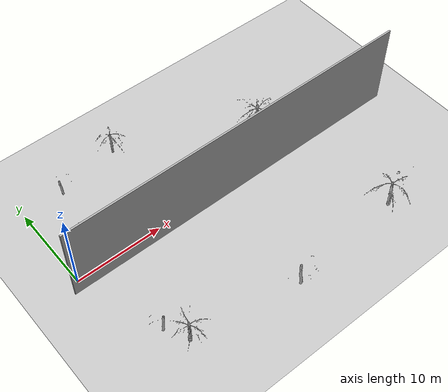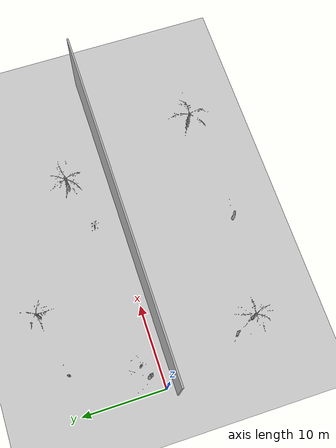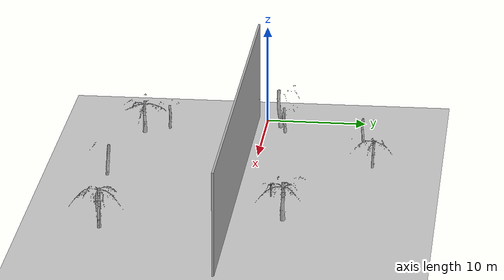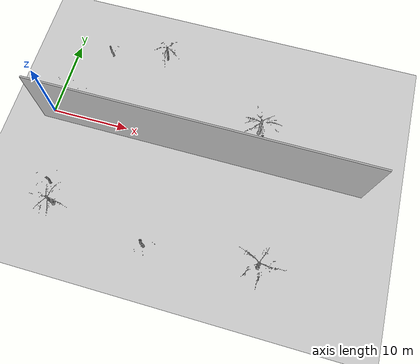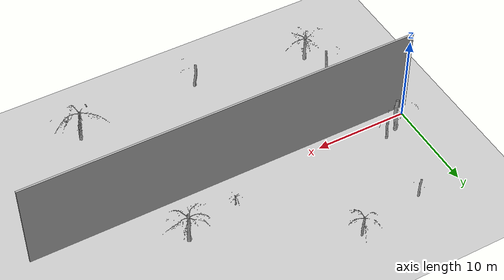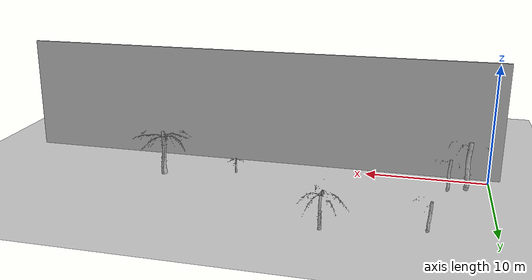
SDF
<sdf version="1.6">
 <world name="default">
  <model name="ground_plane">
   <static>1</static>
   <link name="link">
    <collision name="collision">
     <geometry><plane><normal>0 0 1</normal><size>1000 1000</size></plane></geometry>
     <surface>
      <contact><collide_bitmask>65535</collide_bitmask></contact>
      <friction><ode><mu>100</mu><mu2>50</mu2></ode></friction>
     </surface>
    </collision>
    <visual name="visual">
     <cast_shadows>0</cast_shadows>
     <geometry><plane><normal>0 0 1</normal><size>1000 1000</size></plane></geometry>
     <material>
      <script><uri>file://media/materials/scripts/gazebo.material</uri><name>Gazebo/Grey</name></script>
     </material>
    </visual>
   </link>
  </model>
  <model name="grey_wall_boundary_0">
   <static>1</static>
   <link name="link">
    <pose>0 0 5 0 -0 0</pose>
    <collision name="collision"><geometry><box><size>42 0.2 10</size></box></geometry></collision>
    <visual name="visual">
     <cast_shadows>0</cast_shadows>
     <geometry><box><size>42 0.2 10</size></box></geometry>
    </visual>
   </link>
   <pose>20 -1 0 0 -0 0</pose>
  </model>
  <model name="tre_29">
   <static>1</static>
   <link name="link">
    <pose>12.168865859177409 -1.2299666857075735 0 0 0 3.9978551390964157</pose>
    <inertial>
     <mass>100</mass>
     <inertia><ixx>100</ixx><ixy>0</ixy><ixz>0</ixz><iyy>100</iyy><iyz>0</iyz><izz>100</izz></inertia>
    </inertial>
    <collision name="collision">
     <geometry>
      <mesh>
       <uri>file:///home/dgguglielmo/forest_gen/models_high_res/picea_abies_6.dae</uri>
       <scale>1.1414534060449202 1.1414534060449202 1.1414534060449202</scale>
      </mesh>
     </geometry>
    </collision>
    <visual name="visual">
     <geometry>
      <mesh>
       <uri>file:///home/dgguglielmo/forest_gen/models_high_res/picea_abies_6.dae</uri>
       <scale>1.1414534060449202 1.1414534060449202 1.1414534060449202</scale>
      </mesh>
     </geometry>
    </visual>
   </link>
   <pose>12.168865859177409 -1.2299666857075735 0 0 0 3.9978551390964157</pose>
  </model>
  <model name="tre_60">
   <static>1</static>
   <link name="link">
    <pose>14.018864369085485 -2.6606644750598036 0 0 0 1.8853007292422441</pose>
    <inertial>
     <mass>100</mass>
     <inertia><ixx>100</ixx><ixy>0</ixy><ixz>0</ixz><iyy>100</iyy><iyz>0</iyz><izz>100</izz></inertia>
    </inertial>
    <collision name="collision">
     <geometry>
      <mesh>
       <uri>file:///home/dgguglielmo/forest_gen/models_high_res/picea_abies_5.dae</uri>
       <scale>1.34774008633178 1.34774008633178 1.34774008633178</scale>
      </mesh>
     </geometry>
    </collision>
    <visual name="visual">
     <geometry>
      <mesh>
       <uri>file:///home/dgguglielmo/forest_gen/models_high_res/picea_abies_5.dae</uri>
       <scale>1.34774008633178 1.34774008633178 1.34774008633178</scale>
      </mesh>
     </geometry>
    </visual>
   </link>
   <pose>14.018864369085485 -2.6606644750598036 0 0 0 1.8853007292422441</pose>
  </model>
  <model name="tre_64">
   <static>1</static>
   <link name="link">
    <pose>14.840401717713121 -1.233018629328214 0 0 0 4.036530118761634</pose>
    <inertial>
     <mass>100</mass>
     <inertia><ixx>100</ixx><ixy>0</ixy><ixz>0</ixz><iyy>100</iyy><iyz>0</iyz><izz>100</izz></inertia>
    </inertial>
    <collision name="collision">
     <geometry>
      <mesh>
       <uri>file:///home/dgguglielmo/forest_gen/models_high_res/picea_abies_4.dae</uri>
       <scale>1.5780207963694264 1.5780207963694264 1.5780207963694264</scale>
      </mesh>
     </geometry>
    </collision>
    <visual name="visual">
     <geometry>
      <mesh>
       <uri>file:///home/dgguglielmo/forest_gen/models_high_res/picea_abies_4.dae</uri>
       <scale>1.5780207963694264 1.5780207963694264 1.5780207963694264</scale>
      </mesh>
     </geometry>
    </visual>
   </link>
   <pose>14.840401717713121 -1.233018629328214 0 0 0 4.036530118761634</pose>
  </model>
  <model name="tre_77">
   <static>1</static>
   <link name="link">
    <pose>16.334157241653017 -18.478896604258487 0 0 0 3.045804199991813</pose>
    <inertial>
     <mass>100</mass>
     <inertia><ixx>100</ixx><ixy>0</ixy><ixz>0</ixz><iyy>100</iyy><iyz>0</iyz><izz>100</izz></inertia>
    </inertial>
    <collision name="collision">
     <geometry>
      <mesh>
       <uri>file:///home/dgguglielmo/forest_gen/models_high_res/picea_abies_6.dae</uri>
       <scale>1.7958995731251228 1.7958995731251228 1.7958995731251228</scale>
      </mesh>
     </geometry>
    </collision>
    <visual name="visual">
     <geometry>
      <mesh>
       <uri>file:///home/dgguglielmo/forest_gen/models_high_res/picea_abies_6.dae</uri>
       <scale>1.7958995731251228 1.7958995731251228 1.7958995731251228</scale>
      </mesh>
     </geometry>
    </visual>
   </link>
   <pose>16.334157241653017 -18.478896604258487 0 0 0 3.045804199991813</pose>
  </model>
  <model name="tre_92">
   <static>1</static>
   <link name="link">
    <pose>16.84785739680862 -2.635220994957635 0 0 0 5.793299502029059</pose>
    <inertial>
     <mass>100</mass>
     <inertia><ixx>100</ixx><ixy>0</ixy><ixz>0</ixz><iyy>100</iyy><iyz>0</iyz><izz>100</izz></inertia>
    </inertial>
    <collision name="collision">
     <geometry>
      <mesh>
       <uri>file:///home/dgguglielmo/forest_gen/models_high_res/picea_abies_5.dae</uri>
       <scale>1.8541302296512852 1.8541302296512852 1.8541302296512852</scale>
      </mesh>
     </geometry>
    </collision>
    <visual name="visual">
     <geometry>
      <mesh>
       <uri>file:///home/dgguglielmo/forest_gen/models_high_res/picea_abies_5.dae</uri>
       <scale>1.8541302296512852 1.8541302296512852 1.8541302296512852</scale>
      </mesh>
     </geometry>
    </visual>
   </link>
   <pose>16.84785739680862 -2.635220994957635 0 0 0 5.793299502029059</pose>
  </model>
  <model name="tre_95">
   <static>1</static>
   <link name="link">
    <pose>13.135928748372208 -1.4112312973243526 0 0 0 5.102465112773473</pose>
    <inertial>
     <mass>100</mass>
     <inertia><ixx>100</ixx><ixy>0</ixy><ixz>0</ixz><iyy>100</iyy><iyz>0</iyz><izz>100</izz></inertia>
    </inertial>
    <collision name="collision">
     <geometry>
      <mesh>
       <uri>file:///home/dgguglielmo/forest_gen/models_high_res/picea_abies_6.dae</uri>
       <scale>1.4055238471456564 1.4055238471456564 1.4055238471456564</scale>
      </mesh>
     </geometry>
    </collision>
    <visual name="visual">
     <geometry>
      <mesh>
       <uri>file:///home/dgguglielmo/forest_gen/models_high_res/picea_abies_6.dae</uri>
       <scale>1.4055238471456564 1.4055238471456564 1.4055238471456564</scale>
      </mesh>
     </geometry>
    </visual>
   </link>
   <pose>13.135928748372208 -1.4112312973243526 0 0 0 5.102465112773473</pose>
  </model>
  <model name="tre_106">
   <static>1</static>
   <link name="link">
    <pose>19.246810084680128 -3.0116408937233246 0 0 0 2.5631212448345755</pose>
    <inertial>
     <mass>100</mass>
     <inertia><ixx>100</ixx><ixy>0</ixy><ixz>0</ixz><iyy>100</iyy><iyz>0</iyz><izz>100</izz></inertia>
    </inertial>
    <collision name="collision">
     <geometry>
      <mesh>
       <uri>file:///home/dgguglielmo/forest_gen/models_high_res/picea_abies_6.dae</uri>
       <scale>1.0513148903124316 1.0513148903124316 1.0513148903124316</scale>
      </mesh>
     </geometry>
    </collision>
    <visual name="visual">
     <geometry>
      <mesh>
       <uri>file:///home/dgguglielmo/forest_gen/models_high_res/picea_abies_6.dae</uri>
       <scale>1.0513148903124316 1.0513148903124316 1.0513148903124316</scale>
      </mesh>
     </geometry>
    </visual>
   </link>
   <pose>19.246810084680128 -3.0116408937233246 0 0 0 2.5631212448345755</pose>
  </model>
  <model name="tre_107">
   <static>1</static>
   <link name="link">
    <pose>13.720982302953615 -0.20400275023374803 0 0 0 0.3253363029165158</pose>
    <inertial>
     <mass>100</mass>
     <inertia><ixx>100</ixx><ixy>0</ixy><ixz>0</ixz><iyy>100</iyy><iyz>0</iyz><izz>100</izz></inertia>
    </inertial>
    <collision name="collision">
     <geometry>
      <mesh>
       <uri>file:///home/dgguglielmo/forest_gen/models_high_res/picea_abies_4.dae</uri>
       <scale>1.8011216741998948 1.8011216741998948 1.8011216741998948</scale>
      </mesh>
     </geometry>
    </collision>
    <visual name="visual">
     <geometry>
      <mesh>
       <uri>file:///home/dgguglielmo/forest_gen/models_high_res/picea_abies_4.dae</uri>
       <scale>1.8011216741998948 1.8011216741998948 1.8011216741998948</scale>
      </mesh>
     </geometry>
    </visual>
   </link>
   <pose>13.720982302953615 -0.20400275023374803 0 0 0 0.3253363029165158</pose>
  </model>
  <model name="tre_147">
   <static>1</static>
   <link name="link">
    <pose>11.801814907156238 -11.03987866611063 0 0 0 1.7254356143339893</pose>
    <inertial>
     <mass>100</mass>
     <inertia><ixx>100</ixx><ixy>0</ixy><ixz>0</ixz><iyy>100</iyy><iyz>0</iyz><izz>100</izz></inertia>
    </inertial>
    <collision name="collision">
     <geometry>
      <mesh>
       <uri>file:///home/dgguglielmo/forest_gen/models_high_res/picea_abies_4.dae</uri>
       <scale>0.6161290328736192 0.6161290328736192 0.6161290328736192</scale>
      </mesh>
     </geometry>
    </collision>
    <visual name="visual">
     <geometry>
      <mesh>
       <uri>file:///home/dgguglielmo/forest_gen/models_high_res/picea_abies_4.dae</uri>
       <scale>0.6161290328736192 0.6161290328736192 0.6161290328736192</scale>
      </mesh>
     </geometry>
    </visual>
   </link>
   <pose>11.801814907156238 -11.03987866611063 0 0 0 1.7254356143339893</pose>
  </model>
  <model name="tre_152">
   <static>1</static>
   <link name="link">
    <pose>12.078707670403645 -15.550199677613797 0 0 0 2.943795989488037</pose>
    <inertial>
     <mass>100</mass>
     <inertia><ixx>100</ixx><ixy>0</ixy><ixz>0</ixz><iyy>100</iyy><iyz>0</iyz><izz>100</izz></inertia>
    </inertial>
    <collision name="collision">
     <geometry>
      <mesh>
       <uri>file:///home/dgguglielmo/forest_gen/models_high_res/picea_abies_6.dae</uri>
       <scale>1.1817911224081867 1.1817911224081867 1.1817911224081867</scale>
      </mesh>
     </geometry>
    </collision>
    <visual name="visual">
     <geometry>
      <mesh>
       <uri>file:///home/dgguglielmo/forest_gen/models_high_res/picea_abies_6.dae</uri>
       <scale>1.1817911224081867 1.1817911224081867 1.1817911224081867</scale>
      </mesh>
     </geometry>
    </visual>
   </link>
   <pose>12.078707670403645 -15.550199677613797 0 0 0 2.943795989488037</pose>
  </model>
 </world>
</sdf>
